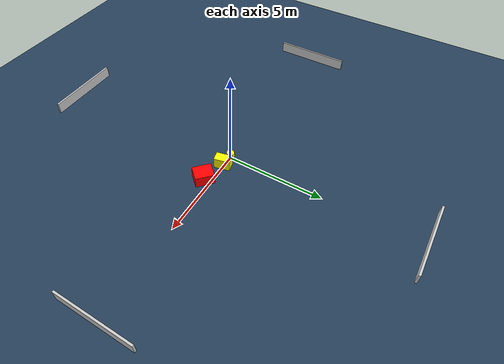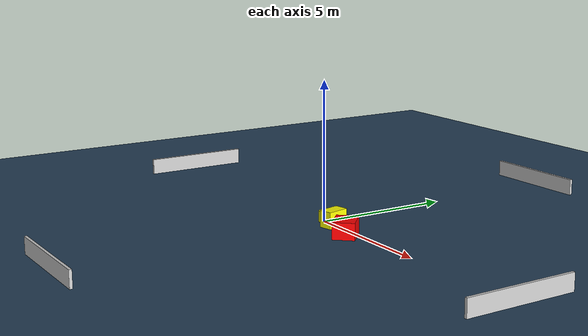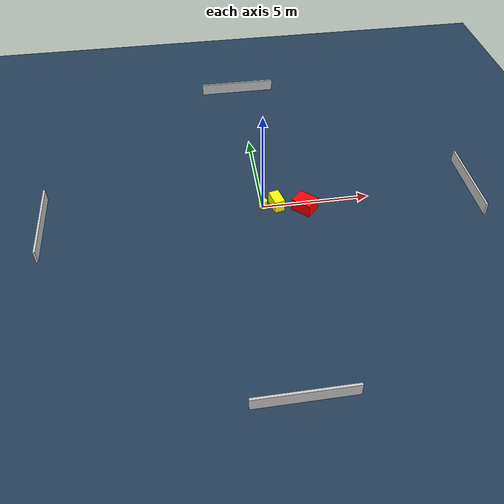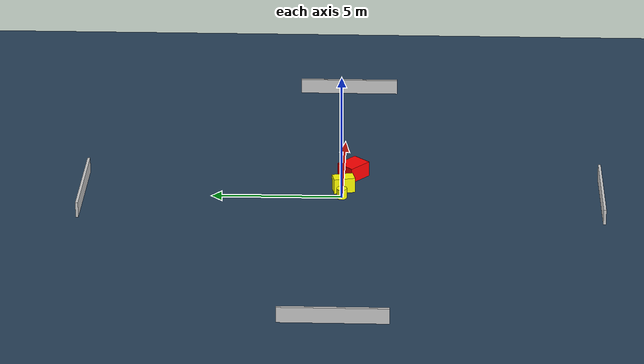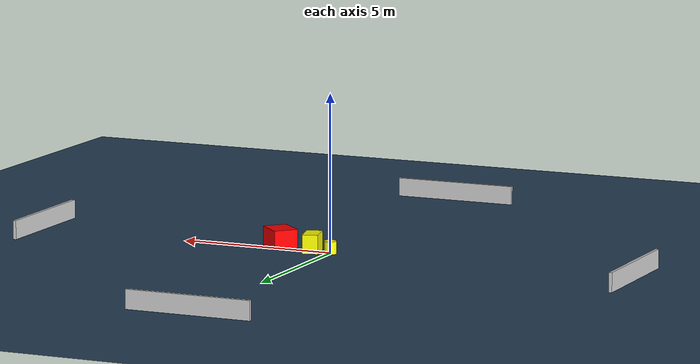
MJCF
<?xml version="1.0" ?>
<mujoco model="generated_environment">
  <option timestep="0.01" integrator="RK4" cone="elliptic"/>
  <default>
    <geom density="1"/>
  </default>
  <asset>
    <texture builtin="gradient" height="3072" name="skybox" rgb1="0.3 0.5 0.7" rgb2="0 0 0" type="skybox" width="512"/>
    <texture builtin="checker" height="300" name="groundplane" rgb1="0.2 0.3 0.4" rgb2="0.1 0.2 0.3" type="2d" width="300"/>
    <material name="groundplane" reflectance="0.2" texrepeat="5 5" texture="groundplane"/>
  </asset>
  <worldbody>
    <light dir="0 0 -1" directional="true" pos="0 0 1.5"/>
    <geom condim="3" friction="0.5 0.005 0.001" material="groundplane" name="floor" pos="0 0 0" size="0 0 0.05" type="plane"/>
    <body name="walls">
      <geom name="wall_1" condim="4" pos="-10.0 0.0 0.3" rgba="0.800000011920929 0.800000011920929 0.800000011920929 1.0" size="0.05 2.0 0.3" type="box"/>
      <geom name="wall_2" condim="4" pos="10.0 0.0 0.3" rgba="0.800000011920929 0.800000011920929 0.800000011920929 1.0" size="0.05 2.0 0.3" type="box"/>
      <geom name="wall_3" condim="4" pos="0.0 -10.0 0.3" rgba="0.800000011920929 0.800000011920929 0.800000011920929 1.0" size="2.0 0.05 0.3" type="box"/>
      <geom name="wall_4" condim="4" pos="0.0 10.0 0.3" rgba="0.800000011920929 0.800000011920929 0.800000011920929 1.0" size="2.0 0.05 0.3" type="box"/>
    </body>
    <body name="robot">
      <joint name="joint_x" type="slide" pos="0 0 0" axis="1 0 0"/>
      <joint name="joint_y" type="slide" pos="0 0 0" axis="0 1 0"/>
      <geom name="robot" type="cylinder" pos="0.0 0.0 0.2" size="0.2 0.2 0.0" mass="5.0" friction="1.0 0.005 0.0001" condim="4" rgba="1.0 1.0 0.0 1.0"/>
    </body>
    <body name="obstacle_1_movable">
      <geom name="obstacle_1_movable" condim="4" pos="0.632486335386183 -0.045888027857623144 0.3" euler="0 0 13.064153620261965" friction="0.0 0.005 0.001" rgba="1.0 1.0 0.0 1.0" size="0.24625652611884025 0.4083849977007711 0.3" type="box" mass="0.1"/>
      <joint type="free"/>
    </body>
    <body name="obstacle_2_static">
      <geom name="obstacle_2_static" condim="4" pos="1.8957724417406254 -0.39346248168926384 0.3" euler="0 0 227.2710435966746" friction="0.0 0.005 0.001" rgba="1.0 0.0 0.0 1.0" size="0.3890906778949863 0.48057891751439336 0.3" type="box"/>
    </body>
  </worldbody>
  <actuator>
    <motor name="actuator_x" joint="joint_x" gear="1" ctrlrange="-1 1"/>
    <motor name="actuator_y" joint="joint_y" gear="1" ctrlrange="-1 1"/>
  </actuator>
</mujoco>
